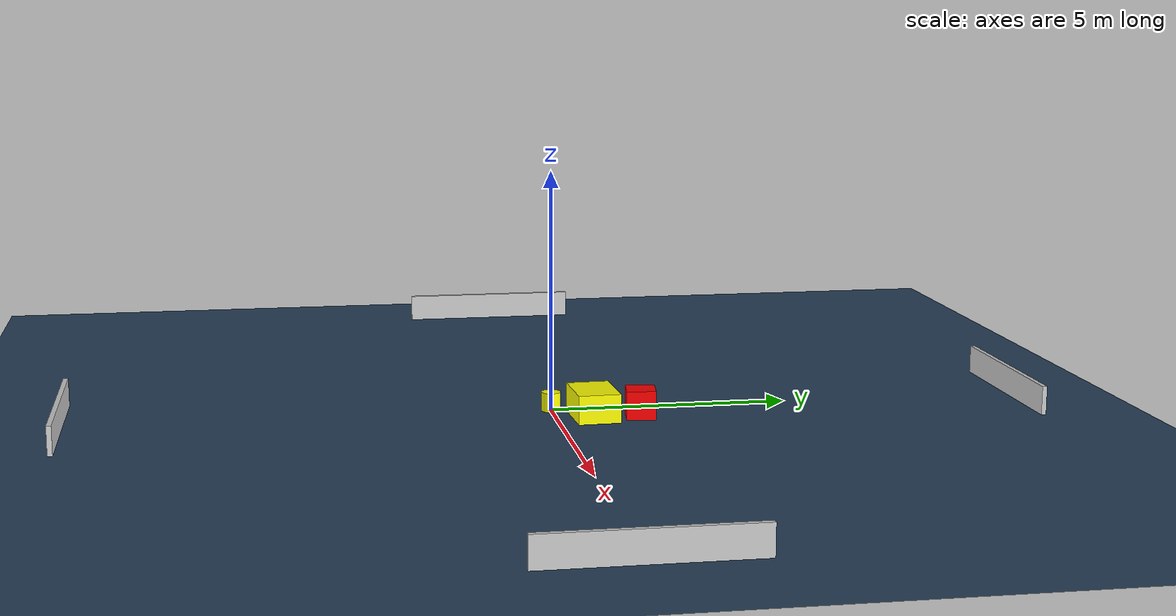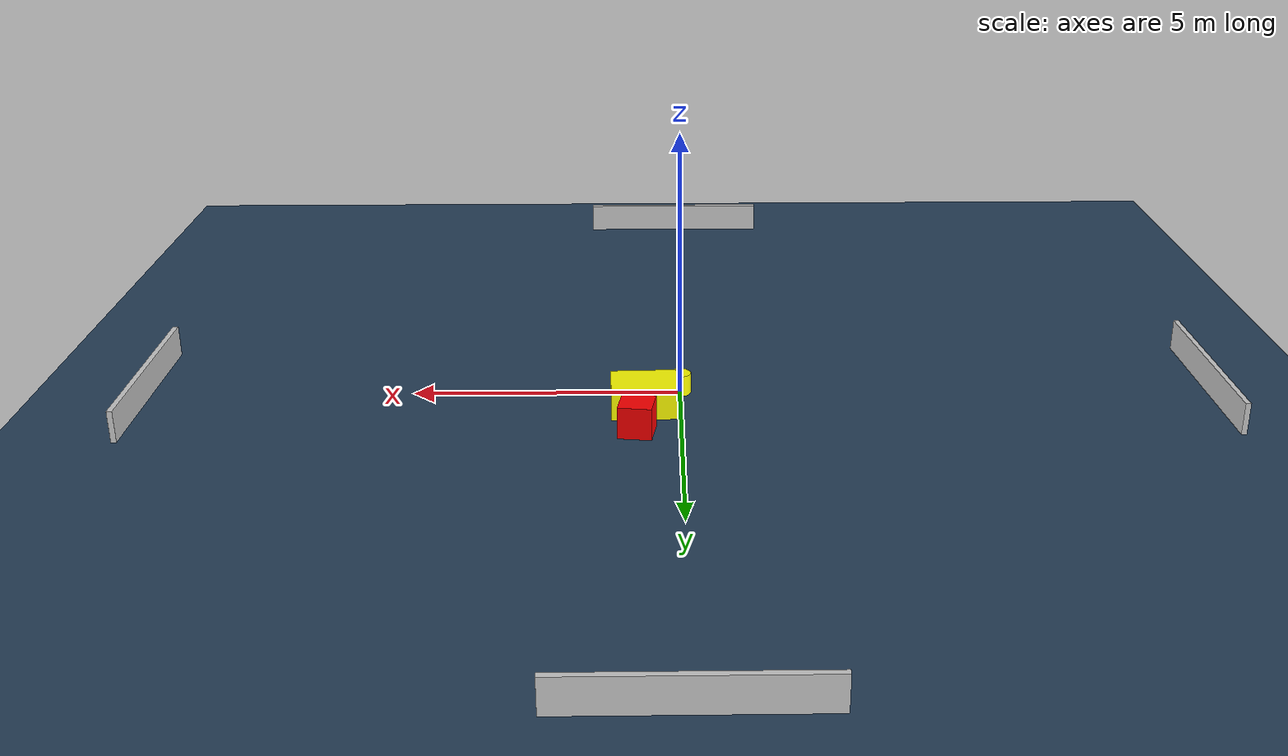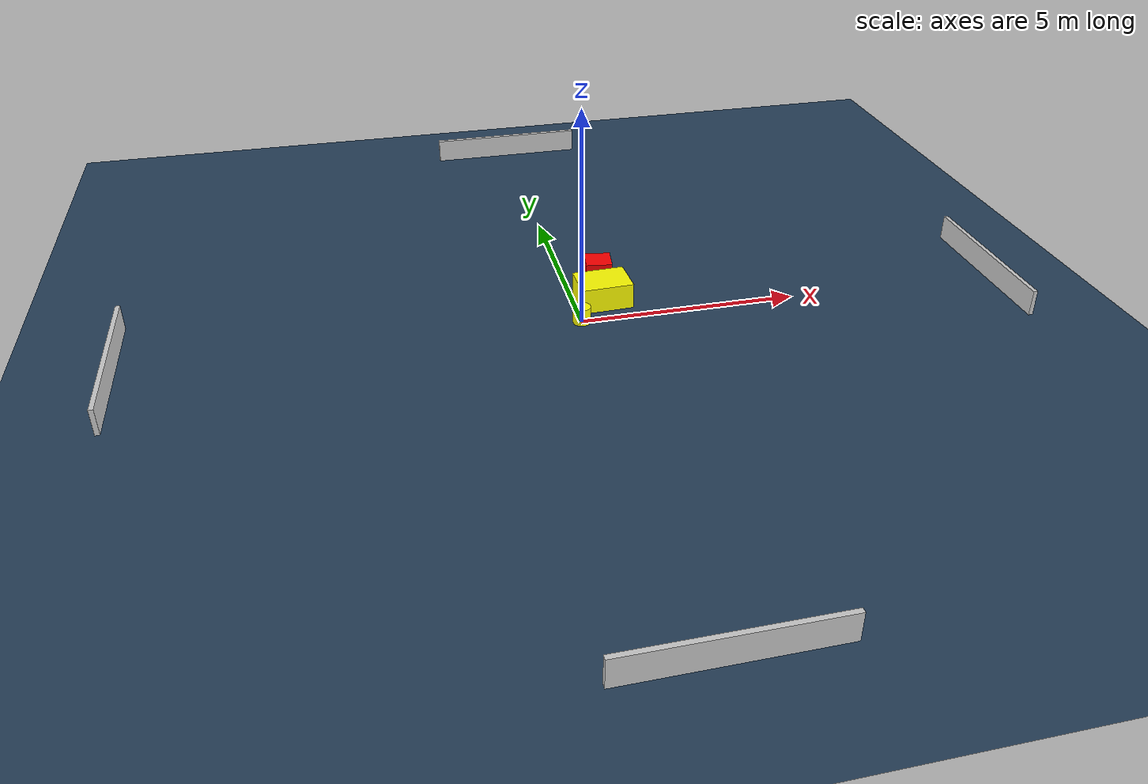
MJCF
<?xml version="1.0" ?>
<mujoco model="generated_environment">
  <option timestep="0.01" integrator="RK4" cone="elliptic"/>
  <default>
    <geom density="1"/>
  </default>
  <asset>
    <texture builtin="gradient" height="3072" name="skybox" rgb1="0.3 0.5 0.7" rgb2="0 0 0" type="skybox" width="512"/>
    <texture builtin="checker" height="300" name="groundplane" rgb1="0.2 0.3 0.4" rgb2="0.1 0.2 0.3" type="2d" width="300"/>
    <material name="groundplane" reflectance="0.2" texrepeat="5 5" texture="groundplane"/>
  </asset>
  <worldbody>
    <light dir="0 0 -1" directional="true" pos="0 0 1.5"/>
    <geom condim="3" friction="0.5 0.005 0.001" material="groundplane" name="floor" pos="0 0 0" size="0 0 0.05" type="plane"/>
    <body name="walls">
      <geom name="wall_1" condim="4" pos="-10.0 0.0 0.3" rgba="0.800000011920929 0.800000011920929 0.800000011920929 1.0" size="0.05 2.0 0.3" type="box"/>
      <geom name="wall_2" condim="4" pos="10.0 0.0 0.3" rgba="0.800000011920929 0.800000011920929 0.800000011920929 1.0" size="0.05 2.0 0.3" type="box"/>
      <geom name="wall_3" condim="4" pos="0.0 -10.0 0.3" rgba="0.800000011920929 0.800000011920929 0.800000011920929 1.0" size="2.0 0.05 0.3" type="box"/>
      <geom name="wall_4" condim="4" pos="0.0 10.0 0.3" rgba="0.800000011920929 0.800000011920929 0.800000011920929 1.0" size="2.0 0.05 0.3" type="box"/>
    </body>
    <body name="robot">
      <joint name="joint_x" type="slide" pos="0 0 0" axis="1 0 0"/>
      <joint name="joint_y" type="slide" pos="0 0 0" axis="0 1 0"/>
      <geom name="robot" type="cylinder" pos="0.0 0.0 0.2" size="0.2 0.2 0.0" mass="5.0" friction="1.0 0.005 0.0001" condim="4" rgba="1.0 1.0 0.0 1.0"/>
    </body>
    <body name="obstacle_1_movable">
      <geom name="obstacle_1_movable" condim="4" pos="0.6753217976801671 0.7782809047995752 0.3" euler="0 0 92.19129157990155" friction="0.0 0.005 0.001" rgba="1.0 1.0 0.0 1.0" size="0.4436053364673556 0.6058722450572865 0.3" type="box" mass="0.1"/>
      <joint type="free"/>
    </body>
    <body name="obstacle_2_static">
      <geom name="obstacle_2_static" condim="4" pos="0.7973119321460255 1.735242287849248 0.3" euler="0 0 351.99590842847397" friction="0.0 0.005 0.001" rgba="1.0 0.0 0.0 1.0" size="0.30758686057540685 0.30161687846032814 0.3" type="box"/>
    </body>
  </worldbody>
  <actuator>
    <motor name="actuator_x" joint="joint_x" gear="1" ctrlrange="-1 1"/>
    <motor name="actuator_y" joint="joint_y" gear="1" ctrlrange="-1 1"/>
  </actuator>
</mujoco>
